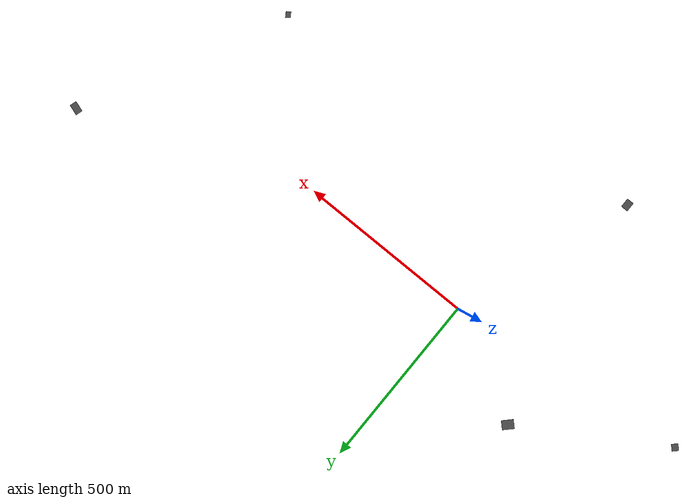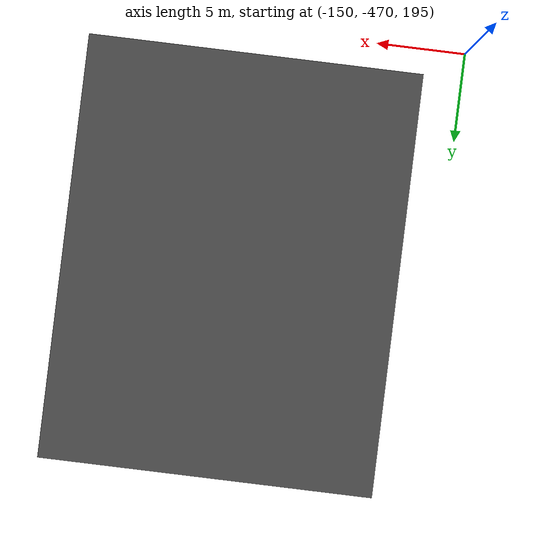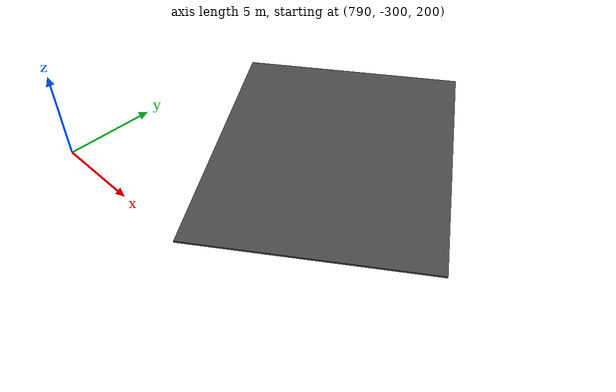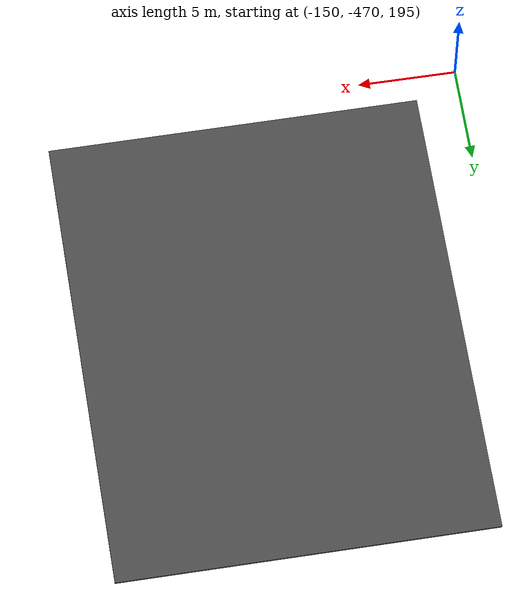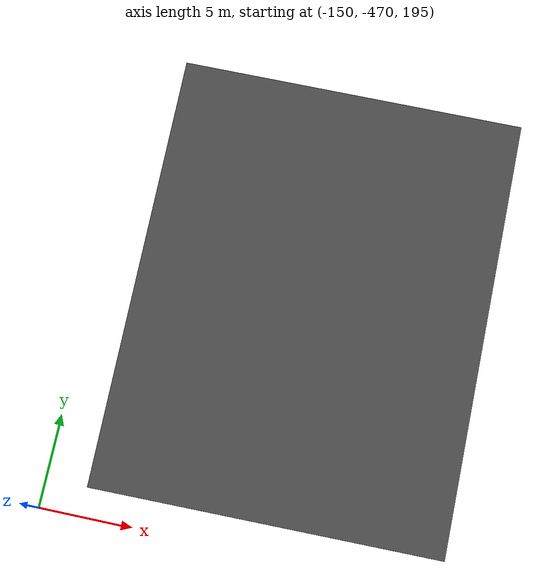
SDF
<sdf version="1.7">
 <world name="default">
  <light name="sun" type="directional">
   <pose>0 0 10 0 -0 0</pose>
   <diffuse>0.8 0.8 0.8 1</diffuse>
   <specular>0.2 0.2 0.2 1</specular>
   <attenuation>
    <range>1000</range>
    <constant>0.9</constant>
    <linear>0.01</linear>
    <quadratic>0.001</quadratic>
   </attenuation>
   <direction>-0.5 0.1 -0.9</direction>
   <spot><inner_angle>0</inner_angle><outer_angle>0</outer_angle><falloff>0</falloff></spot>
  </light>
  <gravity>0 0 -9.8</gravity>
  <magnetic_field>6e-06 2.3e-05 -4.2e-05</magnetic_field>
  <atmosphere type="adiabatic"/>
  <physics type="ode">
   <max_step_size>0.004</max_step_size>
   <real_time_factor>1</real_time_factor>
   <real_time_update_rate>250</real_time_update_rate>
  </physics>
  <scene><ambient>0.4 0.4 0.4 1</ambient><background>0.7 0.7 0.7 1</background><shadows>1</shadows></scene>
  <audio><device>default</device></audio>
  <spherical_coordinates>
   <surface_model>EARTH_WGS84</surface_model>
   <latitude_deg>0</latitude_deg>
   <longitude_deg>0</longitude_deg>
   <elevation>0</elevation>
   <heading_deg>0</heading_deg>
  </spherical_coordinates>
  <model name="Point_B">
   <static>1</static>
   <link name="link">
    <collision name="collision"><geometry><box><size>18.822 23.8541 0.1</size></box></geometry></collision>
    <visual name="visual">
     <cast_shadows>0</cast_shadows>
     <geometry><box><size>18.822 23.8541 0.1</size></box></geometry>
     <material>
      <script>
       <uri>model://asphalt_plane/materials/scripts</uri>
       <uri>model://asphalt_plane/materials/textures</uri>
       <name>vrc/asphalt</name>
      </script>
     </material>
    </visual>
   </link>
   <pose>-138.36 -456.489 195.381 0 -0 0.003662</pose>
  </model>
  <model name="Point_C">
   <static>1</static>
   <link name="link">
    <collision name="collision"><geometry><box><size>27.9642 17.4077 0.1</size></box></geometry></collision>
    <visual name="visual">
     <cast_shadows>0</cast_shadows>
     <geometry><box><size>27.9642 17.4077 0.1</size></box></geometry>
     <material>
      <script>
       <uri>model://asphalt_plane/materials/scripts</uri>
       <uri>model://asphalt_plane/materials/textures</uri>
       <name>vrc/asphalt</name>
      </script>
     </material>
    </visual>
   </link>
   <pose>1048.37 213.988 223.167 0 0 -0.31303</pose>
  </model>
  <model name="Point_D">
   <static>1</static>
   <link name="link">
    <collision name="collision"><geometry><box><size>12.6073 14.9723 0.1</size></box></geometry></collision>
    <visual name="visual">
     <cast_shadows>0</cast_shadows>
     <geometry><box><size>12.6073 14.9723 0.1</size></box></geometry>
     <material>
      <script>
       <uri>model://asphalt_plane/materials/scripts</uri>
       <uri>model://asphalt_plane/materials/textures</uri>
       <name>vrc/asphalt</name>
      </script>
     </material>
    </visual>
   </link>
   <pose>800.897 -290.725 200.7 0 -0 0.588657</pose>
  </model>
  <model name="Point_E">
   <static>1</static>
   <link name="link">
    <collision name="collision"><geometry><box><size>16.7108 17.6421 0.1</size></box></geometry></collision>
    <visual name="visual">
     <cast_shadows>0</cast_shadows>
     <geometry><box><size>16.7108 17.6421 0.1</size></box></geometry>
     <material>
      <script>
       <uri>model://asphalt_plane/materials/scripts</uri>
       <uri>model://asphalt_plane/materials/textures</uri>
       <name>vrc/asphalt</name>
      </script>
     </material>
    </visual>
   </link>
   <pose>-590.974 -68.1333 225 0 -0 0.786216</pose>
  </model>
  <model name="Point_A">
   <static>1</static>
   <link name="link">
    <collision name="collision"><geometry><box><size>29.998 23.0961 0.1</size></box></geometry></collision>
    <visual name="visual">
     <cast_shadows>0</cast_shadows>
     <geometry><box><size>29.998 23.0961 0.1</size></box></geometry>
     <material>
      <script>
       <uri>model://asphalt_plane/materials/scripts</uri>
       <uri>model://asphalt_plane/materials/textures</uri>
       <name>vrc/asphalt</name>
      </script>
     </material>
    </visual>
   </link>
   <pose>-246.176 145.099 217 0 -0 0.794344</pose>
  </model>
  <model name="camera_point_a">
   <static>0</static>
   <link name="camera_a_link">
    <inertial>
     <mass>0.1</mass>
     <inertia>
      <ixx>0.000166667</ixx>
      <iyy>0.000166667</iyy>
      <izz>0.000166667</izz>
      <ixy>0</ixy>
      <ixz>0</ixz>
      <iyz>0</iyz>
     </inertia>
    </inertial>
    <sensor name="camera_point_a" type="camera">
     <camera>
      <horizontal_fov>1.047</horizontal_fov>
      <image>
       <width>320</width>
       <visual name="visual"><geometry><box><size>0.1 0.1 0.1</size></box></geometry></visual>
       <height>240</height>
      </image>
      <clip><near>0.1</near><far>100</far></clip>
     </camera>
     <always_on>1</always_on>
     <update_rate>30</update_rate>
     <visualize>0</visualize>
     <plugin name="cameraplugin" filename="libgazebo_ros_camera.so">
      <alwaysOn>1</alwaysOn>
      <updateRate>0.0</updateRate>
      <cameraName>camera_point_a</cameraName>
      <imageTopicName>image_raw</imageTopicName>
      <cameraInfoTopicName>camera_info</cameraInfoTopicName>
      <frameName>camera_a_link</frameName>
      <hackBaseline>0.07</hackBaseline>
      <distortionK1>0.0</distortionK1>
      <distortionK2>0.0</distortionK2>
      <distortionK3>0.0</distortionK3>
      <distortionT1>0.0</distortionT1>
      <distortionT2>0.0</distortionT2>
     </plugin>
    </sensor>
    <gravity>0</gravity>
   </link>
   <pose>-246.176 145.099 247 0 1.5707 2.365</pose>
  </model>
  <model name="camera_point_b">
   <static>0</static>
   <link name="camera_b_link">
    <inertial>
     <mass>0.1</mass>
     <inertia>
      <ixx>0.000166667</ixx>
      <iyy>0.000166667</iyy>
      <izz>0.000166667</izz>
      <ixy>0</ixy>
      <ixz>0</ixz>
      <iyz>0</iyz>
     </inertia>
    </inertial>
    <sensor name="camera_point_b" type="camera">
     <camera>
      <horizontal_fov>1.047</horizontal_fov>
      <image><width>320</width><height>240</height></image>
      <clip><near>0.1</near><far>100</far></clip>
     </camera>
     <always_on>1</always_on>
     <update_rate>30</update_rate>
     <visualize>0</visualize>
     <plugin name="cameraplugin" filename="libgazebo_ros_camera.so">
      <alwaysOn>1</alwaysOn>
      <updateRate>0.0</updateRate>
      <cameraName>camera_point_b</cameraName>
      <imageTopicName>image_raw</imageTopicName>
      <cameraInfoTopicName>camera_info</cameraInfoTopicName>
      <frameName>camera_b_link</frameName>
      <hackBaseline>0.07</hackBaseline>
      <distortionK1>0.0</distortionK1>
      <distortionK2>0.0</distortionK2>
      <distortionK3>0.0</distortionK3>
      <distortionT1>0.0</distortionT1>
      <distortionT2>0.0</distortionT2>
     </plugin>
    </sensor>
    <gravity>0</gravity>
   </link>
   <pose>-138.36 -456.489 218 0 1.5707 0</pose>
  </model>
  <model name="camera_point_c">
   <static>0</static>
   <link name="camera_c_link">
    <inertial>
     <mass>0.1</mass>
     <inertia>
      <ixx>0.000166667</ixx>
      <iyy>0.000166667</iyy>
      <izz>0.000166667</izz>
      <ixy>0</ixy>
      <ixz>0</ixz>
      <iyz>0</iyz>
     </inertia>
    </inertial>
    <sensor name="camera_point_c" type="camera">
     <camera>
      <horizontal_fov>1.047</horizontal_fov>
      <image><width>320</width><height>240</height></image>
      <clip><near>0.1</near><far>100</far></clip>
     </camera>
     <always_on>1</always_on>
     <update_rate>30</update_rate>
     <visualize>0</visualize>
     <plugin name="cameraplugin" filename="libgazebo_ros_camera.so">
      <alwaysOn>1</alwaysOn>
      <updateRate>0.0</updateRate>
      <cameraName>camera_point_c</cameraName>
      <imageTopicName>image_raw</imageTopicName>
      <cameraInfoTopicName>camera_info</cameraInfoTopicName>
      <frameName>camera_c_link</frameName>
      <hackBaseline>0.07</hackBaseline>
      <distortionK1>0.0</distortionK1>
      <distortionK2>0.0</distortionK2>
      <distortionK3>0.0</distortionK3>
      <distortionT1>0.0</distortionT1>
      <distortionT2>0.0</distortionT2>
     </plugin>
    </sensor>
    <gravity>0</gravity>
   </link>
   <pose>1048.37 213.988 250 0 1.5707 1.25767</pose>
  </model>
  <model name="camera_point_d">
   <static>0</static>
   <link name="camera_d_link">
    <inertial>
     <mass>0.1</mass>
     <inertia>
      <ixx>0.000166667</ixx>
      <iyy>0.000166667</iyy>
      <izz>0.000166667</izz>
      <ixy>0</ixy>
      <ixz>0</ixz>
      <iyz>0</iyz>
     </inertia>
    </inertial>
    <sensor name="camera_point_d" type="camera">
     <camera>
      <horizontal_fov>1.047</horizontal_fov>
      <image><width>320</width><height>240</height></image>
      <clip><near>0.1</near><far>100</far></clip>
     </camera>
     <always_on>1</always_on>
     <update_rate>30</update_rate>
     <visualize>0</visualize>
     <plugin name="cameraplugin" filename="libgazebo_ros_camera.so">
      <alwaysOn>1</alwaysOn>
      <updateRate>0.0</updateRate>
      <cameraName>camera_point_d</cameraName>
      <imageTopicName>image_raw</imageTopicName>
      <cameraInfoTopicName>camera_info</cameraInfoTopicName>
      <frameName>camera_d_link</frameName>
      <hackBaseline>0.07</hackBaseline>
      <distortionK1>0.0</distortionK1>
      <distortionK2>0.0</distortionK2>
      <distortionK3>0.0</distortionK3>
      <distortionT1>0.0</distortionT1>
      <distortionT2>0.0</distortionT2>
     </plugin>
    </sensor>
    <gravity>0</gravity>
   </link>
   <pose>800.897 -290.725 217 0 1.5707 0.588657</pose>
  </model>
  <model name="camera_point_e">
   <static>0</static>
   <link name="camera_e_link">
    <inertial>
     <mass>0.1</mass>
     <inertia>
      <ixx>0.000166667</ixx>
      <iyy>0.000166667</iyy>
      <izz>0.000166667</izz>
      <ixy>0</ixy>
      <ixz>0</ixz>
      <iyz>0</iyz>
     </inertia>
    </inertial>
    <sensor name="camera_point_e" type="camera">
     <camera>
      <horizontal_fov>1.047</horizontal_fov>
      <image><width>320</width><height>240</height></image>
      <clip><near>0.1</near><far>100</far></clip>
     </camera>
     <always_on>1</always_on>
     <update_rate>30</update_rate>
     <visualize>0</visualize>
     <plugin name="cameraplugin" filename="libgazebo_ros_camera.so">
      <alwaysOn>1</alwaysOn>
      <updateRate>0.0</updateRate>
      <cameraName>camera_point_e</cameraName>
      <imageTopicName>image_raw</imageTopicName>
      <cameraInfoTopicName>camera_info</cameraInfoTopicName>
      <frameName>camera_e_link</frameName>
      <hackBaseline>0.07</hackBaseline>
      <distortionK1>0.0</distortionK1>
      <distortionK2>0.0</distortionK2>
      <distortionK3>0.0</distortionK3>
      <distortionT1>0.0</distortionT1>
      <distortionT2>0.0</distortionT2>
     </plugin>
    </sensor>
    <gravity>0</gravity>
   </link>
   <pose>-590.974 -68.1333 245 0 1.5707 0.786216</pose>
  </model>
 </world>
</sdf>
